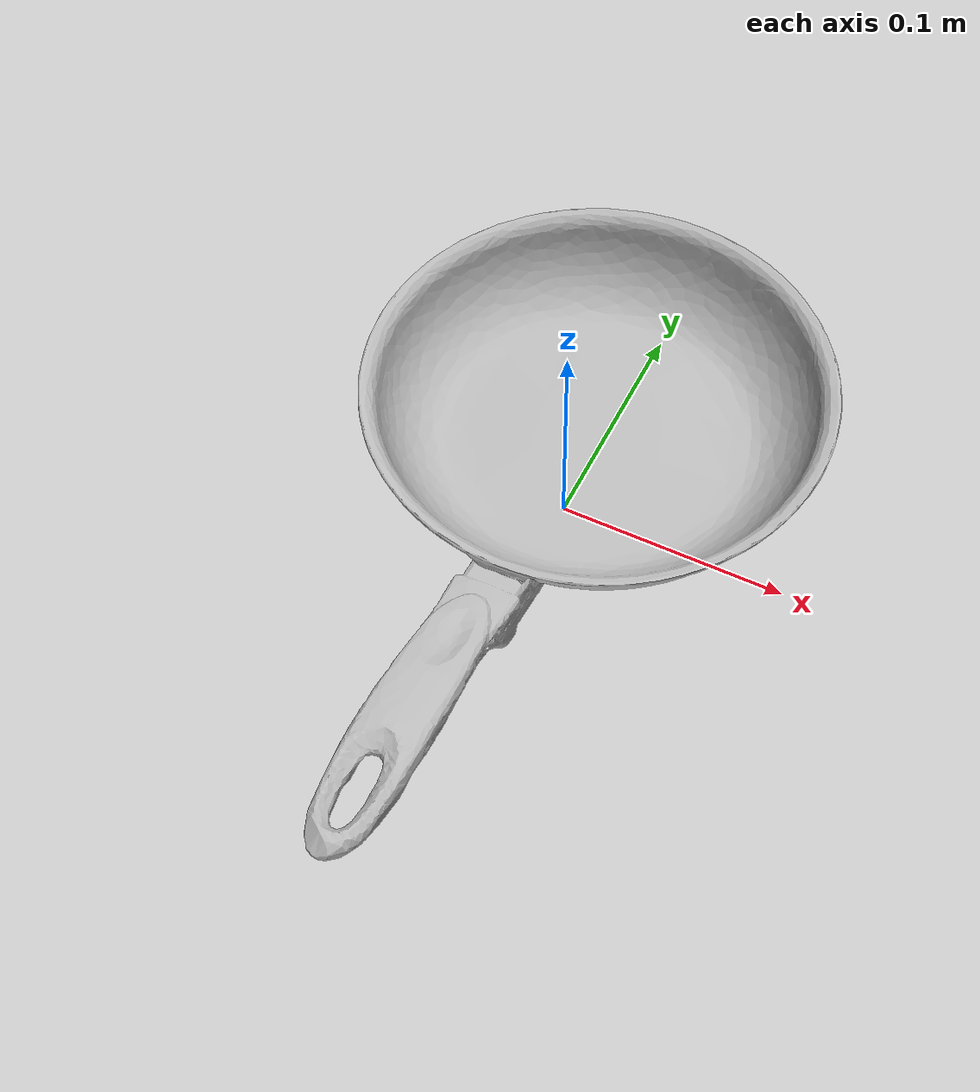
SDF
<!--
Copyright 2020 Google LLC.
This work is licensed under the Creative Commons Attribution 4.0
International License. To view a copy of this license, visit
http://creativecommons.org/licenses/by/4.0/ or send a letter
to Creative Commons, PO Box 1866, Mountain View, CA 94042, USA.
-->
<?xml version="1.0" ?>
<sdf version="1.6">
  <model name="Chefmate_8_Frypan">
    <link name="link_0">
      <visual name="visual">
        <geometry>
          <mesh>
            <uri>meshes/model.obj</uri>
          </mesh>
        </geometry>
      </visual>
      <collision name="collision_0">
        <geometry>
          <mesh>
            <uri>meshes/model.obj</uri>
          </mesh>
        </geometry>
      </collision>
    </link>
  </model>
</sdf>
